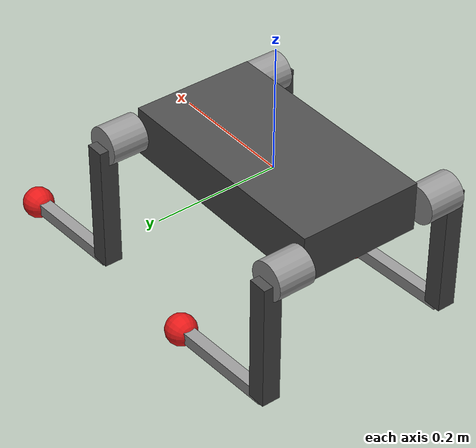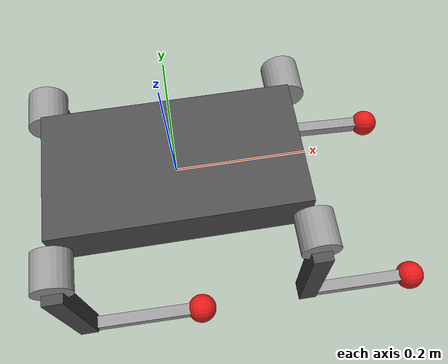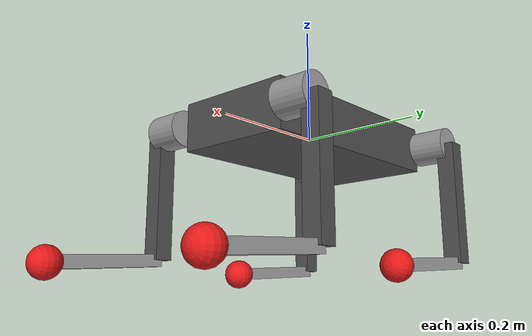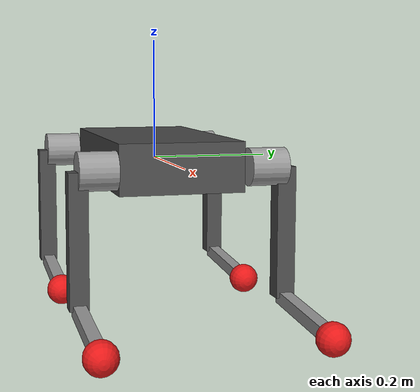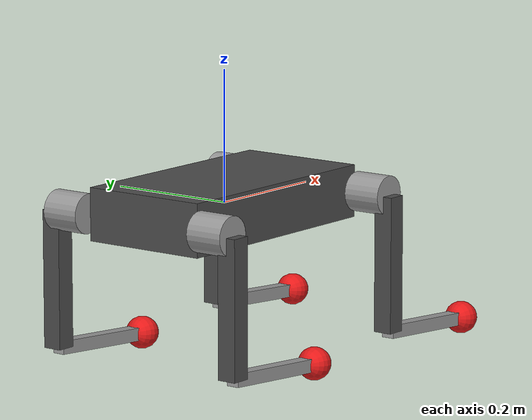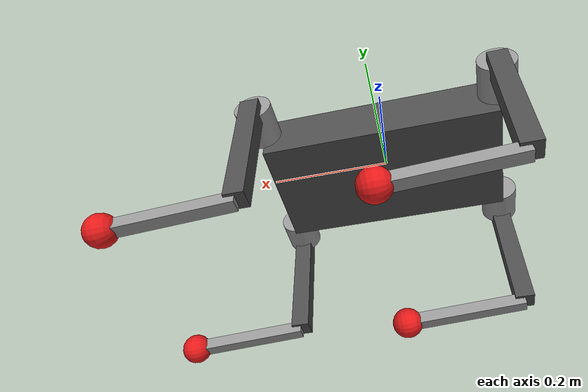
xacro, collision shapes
<?xml version="1.0"?>
<robot xmlns:xacro="http://www.ros.org/wiki/xacro" name="mini_cheetah">

  <!-- ==================== 材质定义 ==================== -->
  <material name="dark_grey">
    <color rgba="0.2 0.2 0.2 1.0"/>
  </material>
  <material name="orange">
    <color rgba="1.0 0.5 0.0 1.0"/>
  </material>
  <material name="blue">
    <color rgba="0.0 0.4 0.8 1.0"/>
  </material>
  <material name="cyan">
    <color rgba="0.0 0.8 0.8 1.0"/>
  </material>
  <material name="red">
    <color rgba="0.9 0.1 0.1 1.0"/>
  </material>

  <!-- ==================== 几何与质量物理参数定义 ==================== -->
  <xacro:property name="body_length" value="0.38"/> <!-- X 方向长度 -->
  <xacro:property name="body_width" value="0.20"/>  <!-- Y 方向宽度 -->
  <xacro:property name="body_height" value="0.08"/> <!-- Z 方向高度 -->
  <xacro:property name="body_mass" value="3.3"/>    <!-- 躯干真实质量 -->

  <xacro:property name="hip_offset_x" value="0.19"/>
  <xacro:property name="hip_offset_y" value="0.104"/>

  <xacro:property name="hip_length" value="0.06"/>
  <xacro:property name="hip_mass" value="0.5"/>

  <xacro:property name="thigh_length" value="0.209"/>
  <xacro:property name="thigh_mass" value="0.6"/>

  <xacro:property name="calf_length" value="0.195"/>
  <xacro:property name="calf_mass" value="0.15"/>

  <xacro:property name="foot_mass" value="0.05"/>

  <!-- ==================== 机器人基座 (Base Link) ==================== -->
  <link name="base_link">
    <visual>
      <origin xyz="0 0 0" rpy="0 0 0"/>
      <geometry>
        <mesh filename="file://$(find mini_cheetah_demo)/meshes/trunk.dae" scale="1 1 1"/>
      </geometry>
    </visual>
    <collision>
      <origin xyz="0 0 0" rpy="0 0 0"/>
      <geometry>
        <box size="${body_length} ${body_width} ${body_height}"/>
      </geometry>
    </collision>
    <inertial>
      <origin xyz="0 0 0" rpy="0 0 0"/>
      <mass value="${body_mass}"/>
      <inertia ixx="0.012760" ixy="0.0" ixz="0.0" iyy="0.041470" iyz="0.0" izz="0.050710"/>
    </inertial>
  </link>

  <gazebo reference="base_link">
    <material>Gazebo/DarkGrey</material>
  </gazebo>

  <!-- ==================== 单腿 3 自由度 Xacro 宏 ==================== -->
  <xacro:macro name="leg" params="prefix side_x side_y">

    <!-- 1. Hip 关节 (Roll 轴: X 轴旋转) -->
    <joint name="${prefix}_hip_joint" type="revolute">
      <parent link="base_link"/>
      <child link="${prefix}_hip"/>
      <origin xyz="${side_x * hip_offset_x} ${side_y * hip_offset_y} 0" rpy="0 0 0"/>
      <axis xyz="1 0 0"/>
      <limit lower="-0.8" upper="0.8" effort="17.0" velocity="40.0"/>
      <dynamics damping="0.1" friction="0.05"/>
    </joint>

    <link name="${prefix}_hip">
      <visual>
        <origin xyz="0 0 0" rpy="0 0 0"/>
        <geometry>
          <mesh filename="file://$(find mini_cheetah_demo)/meshes/hip.dae" scale="1 1 1"/>
        </geometry>
      </visual>
      <collision>
        <origin xyz="0 ${side_y * hip_length / 2.0} 0" rpy="1.5708 0 0"/>
        <geometry>
          <cylinder radius="0.03" length="${hip_length}"/>
        </geometry>
      </collision>
      <inertial>
        <origin xyz="0 ${side_y * hip_length / 2.0} 0" rpy="1.5708 0 0"/>
        <mass value="${hip_mass}"/>
        <inertia ixx="0.000467" ixy="0.0" ixz="0.0" iyy="0.000400" iyz="0.0" izz="0.000467"/>
      </inertial>
    </link>

    <!-- 2. Thigh 关节 (Pitch 轴: Y 轴旋转) -->
    <joint name="${prefix}_thigh_joint" type="revolute">
      <parent link="${prefix}_hip"/>
      <child link="${prefix}_thigh"/>
      <origin xyz="0 ${side_y * hip_length} 0" rpy="0 0 0"/>
      <axis xyz="0 1 0"/>
      <limit lower="-1.5" upper="1.5" effort="17.0" velocity="40.0"/>
      <dynamics damping="0.1" friction="0.05"/>
    </joint>

    <link name="${prefix}_thigh">
      <visual>
        <origin xyz="0 0 0" rpy="0 0 0"/>
        <geometry>
          <xacro:if value="${side_y == 1}">
            <mesh filename="file://$(find mini_cheetah_demo)/meshes/thigh.dae" scale="1 1 1"/>
          </xacro:if>
          <xacro:if value="${side_y == -1}">
            <mesh filename="file://$(find mini_cheetah_demo)/meshes/thigh_mirror.dae" scale="1 1 1"/>
          </xacro:if>
        </geometry>
      </visual>
      <collision>
        <origin xyz="0 0 ${-thigh_length / 2.0}" rpy="0 0 0"/>
        <geometry>
          <box size="0.03 0.03 ${thigh_length}"/>
        </geometry>
      </collision>
      <inertial>
        <origin xyz="0 0 ${-thigh_length / 2.0}" rpy="0 0 0"/>
        <mass value="${thigh_mass}"/>
        <inertia ixx="0.002264" ixy="0.0" ixz="0.0" iyy="0.002264" iyz="0.0" izz="0.000160"/>
      </inertial>
    </link>

    <!-- 3. Calf 关节 (Pitch 轴: Y 轴旋转) -->
    <joint name="${prefix}_calf_joint" type="revolute">
      <parent link="${prefix}_thigh"/>
      <child link="${prefix}_calf"/>
      <origin xyz="0 0 ${-thigh_length}" rpy="0 0 0"/>
      <axis xyz="0 1 0"/>
      <limit lower="-2.5" upper="-0.5" effort="17.0" velocity="40.0"/>
      <dynamics damping="0.1" friction="0.05"/>
    </joint>

    <link name="${prefix}_calf">
      <visual>
        <origin xyz="0 0 0" rpy="0 0 0"/>
        <geometry>
          <mesh filename="file://$(find mini_cheetah_demo)/meshes/calf.dae" scale="1 1 1"/>
        </geometry>
      </visual>
      <collision>
        <origin xyz="0 0 ${-calf_length / 2.0}" rpy="0 0 0"/>
        <geometry>
          <box size="0.02 0.02 ${calf_length}"/>
        </geometry>
      </collision>
      <inertial>
        <origin xyz="0 0 ${-calf_length / 2.0}" rpy="0 0 0"/>
        <mass value="${calf_mass}"/>
        <inertia ixx="0.000480" ixy="0.0" ixz="0.0" iyy="0.000480" iyz="0.0" izz="0.000010"/>
      </inertial>
    </link>

    <!-- Foot 末端球体 (带有橡胶高摩擦力接触属性) -->
    <joint name="${prefix}_foot_joint" type="fixed">
      <parent link="${prefix}_calf"/>
      <child link="${prefix}_foot"/>
      <origin xyz="0 0 ${-calf_length}" rpy="0 0 0"/>
    </joint>

    <gazebo reference="${prefix}_hip">
      <material>Gazebo/Grey</material>
    </gazebo>
    <gazebo reference="${prefix}_thigh">
      <material>Gazebo/DarkGrey</material>
    </gazebo>
    <gazebo reference="${prefix}_calf">
      <material>Gazebo/Grey</material>
    </gazebo>

    <link name="${prefix}_foot">
      <visual>
        <origin xyz="0 0 0" rpy="0 0 0"/>
        <geometry>
          <sphere radius="0.025"/>
        </geometry>
        <material name="red"/>
      </visual>
      <collision>
        <origin xyz="0 0 0" rpy="0 0 0"/>
        <geometry>
          <sphere radius="0.025"/>
        </geometry>
      </collision>
      <inertial>
        <origin xyz="0 0 0" rpy="0 0 0"/>
        <mass value="${foot_mass}"/>
        <inertia ixx="0.000013" ixy="0.0" ixz="0.0" iyy="0.000013" iyz="0.0" izz="0.000013"/>
      </inertial>
    </link>

    <!-- Gazebo 物理属性配置: 足端地面高摩擦力与刚度 -->
    <gazebo reference="${prefix}_foot">
      <mu1>1.2</mu1>
      <mu2>1.2</mu2>
      <kp>1000000.0</kp>
      <kd>100.0</kd>
      <max_vel>0.01</max_vel>
      <min_depth>0.001</min_depth>
      <material>Gazebo/Red</material>
    </gazebo>

    <!-- Gazebo Harmonic 关节力矩直通控制器 (ApplyJointForce) -->
    <gazebo>
      <plugin filename="gz-sim-apply-joint-force-system" name="gz::sim::systems::ApplyJointForce">
        <joint_name>${prefix}_hip_joint</joint_name>
      </plugin>
      <plugin filename="gz-sim-apply-joint-force-system" name="gz::sim::systems::ApplyJointForce">
        <joint_name>${prefix}_thigh_joint</joint_name>
      </plugin>
      <plugin filename="gz-sim-apply-joint-force-system" name="gz::sim::systems::ApplyJointForce">
        <joint_name>${prefix}_calf_joint</joint_name>
      </plugin>
    </gazebo>

  </xacro:macro>

  <!-- ==================== 四条腿实例化 ==================== -->
  <xacro:leg prefix="FL" side_x="1" side_y="1"/>
  <xacro:leg prefix="FR" side_x="1" side_y="-1"/>
  <xacro:leg prefix="RL" side_x="-1" side_y="1"/>
  <xacro:leg prefix="RR" side_x="-1" side_y="-1"/>

  <!-- ==================== Gazebo Harmonic 物理引擎插件配置 ==================== -->
  <gazebo>
    <plugin filename="gz-sim-joint-state-publisher-system" name="gz::sim::systems::JointStatePublisher">
      <topic>/joint_states</topic>
    </plugin>
    <plugin filename="gz-sim-scene-broadcaster-system" name="gz::sim::systems::SceneBroadcaster">
    </plugin>
    <plugin filename="gz-sim-odometry-publisher-system" name="gz::sim::systems::OdometryPublisher">
      <odom_frame>odom</odom_frame>
      <robot_base_frame>base_link</robot_base_frame>
      <odom_publish_frequency>250</odom_publish_frequency>
      <dimensions>3</dimensions>
    </plugin>
  </gazebo>

</robot>
